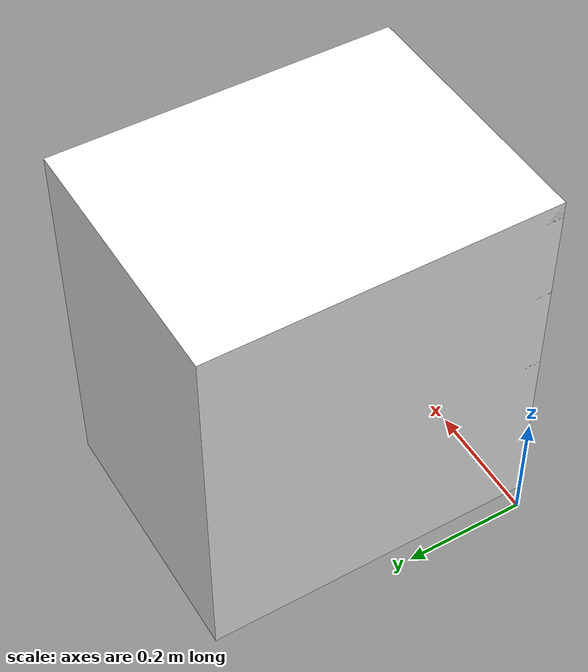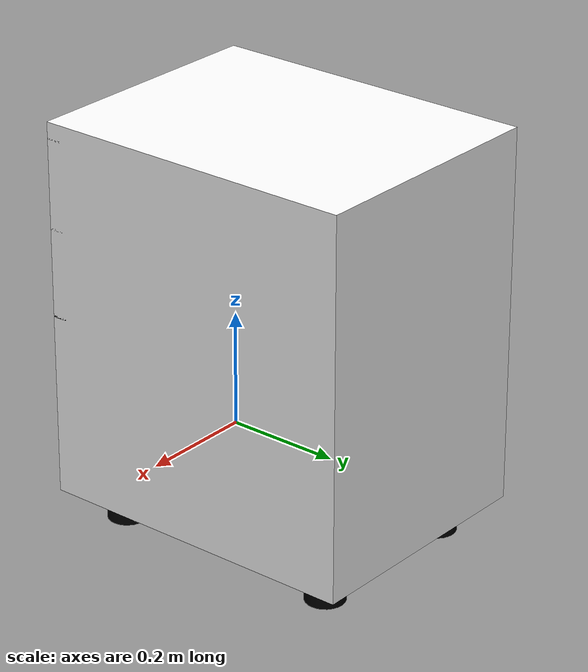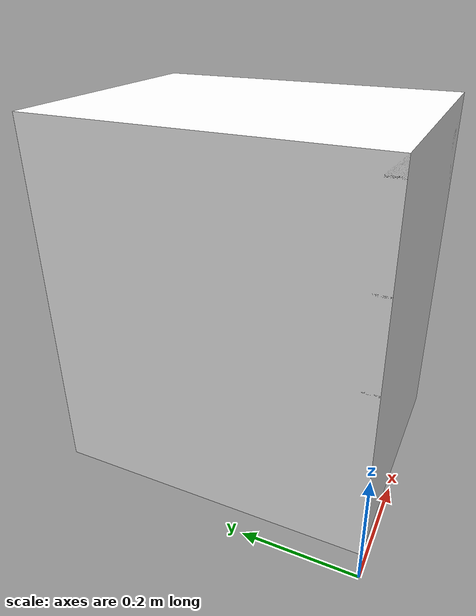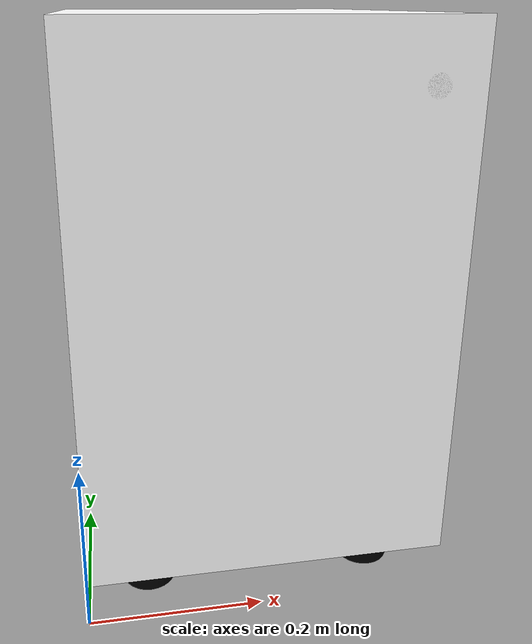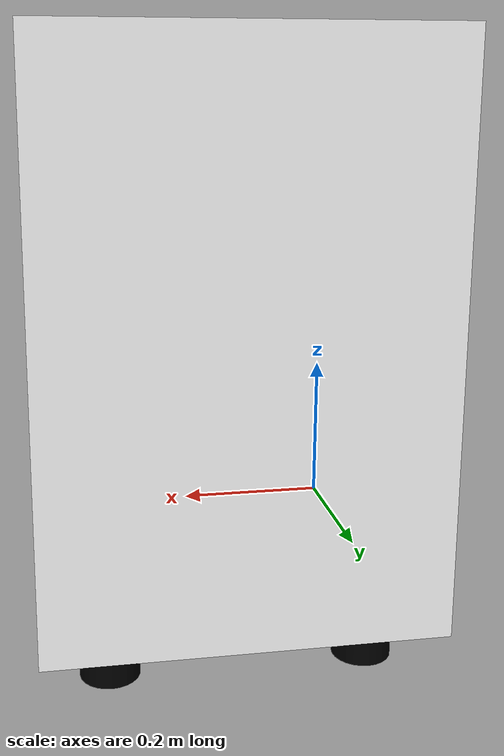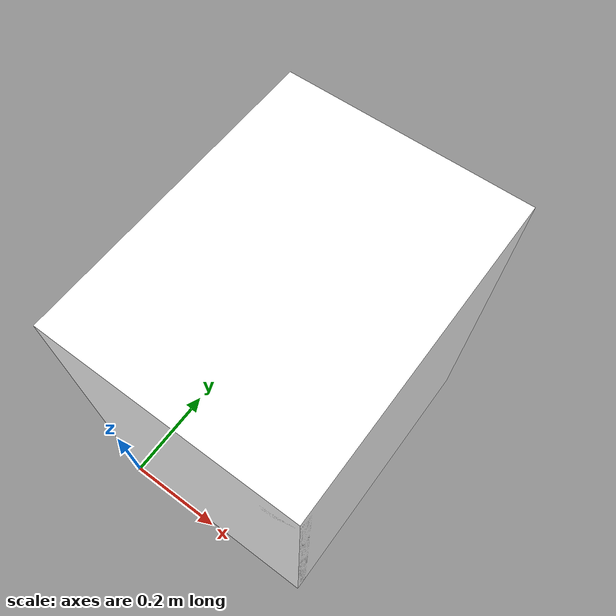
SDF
<?xml version="1.0"?>
<sdf version="1.3">
  <model name="HKU Filing Cabinet">
    <static>true</static>
    <link name="link">
      <collision name="collision">
        <geometry>
          <mesh>
           <uri>model://filecabinet/meshes/filecabinet.dae</uri>
          </mesh>
        </geometry>
      </collision>
      <visual name="visual">
        <geometry>
          <mesh>
           <uri>model://filecabinet/meshes/filecabinet.dae</uri>
          </mesh>
        </geometry>
      </visual>
    </link>
  </model>
</sdf>
